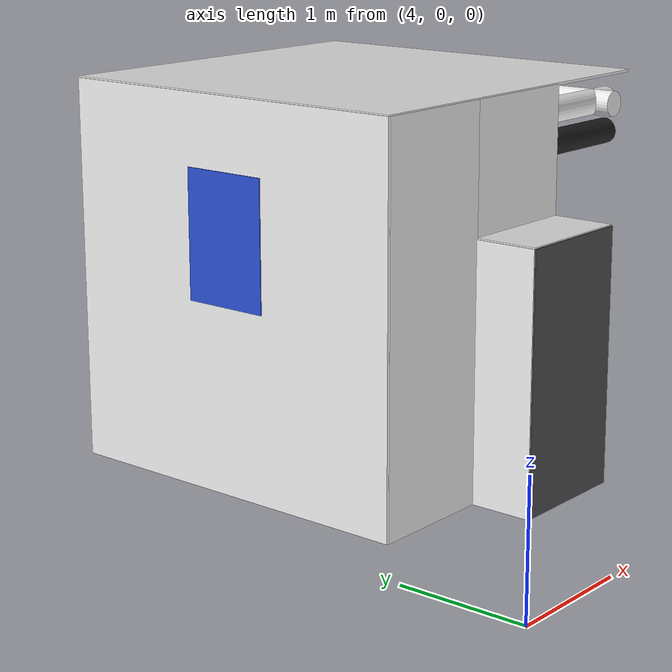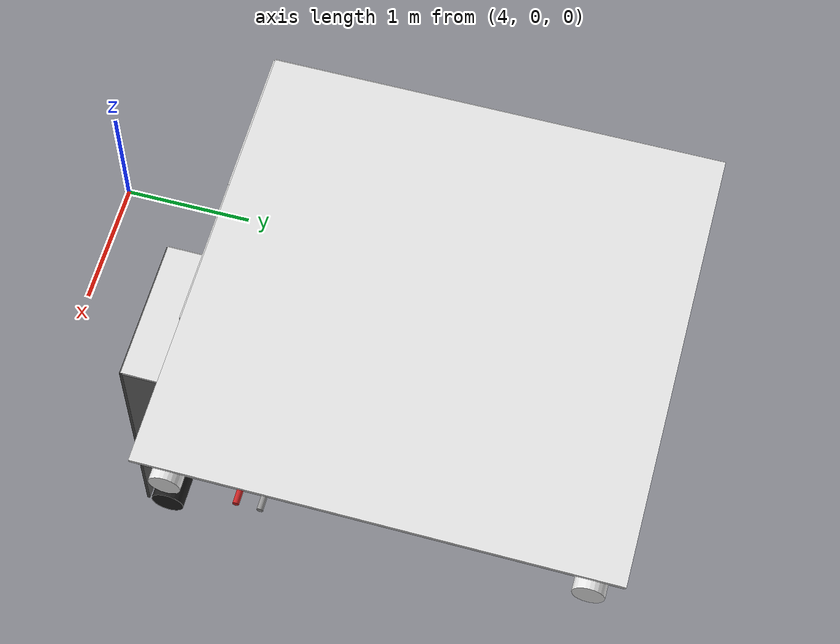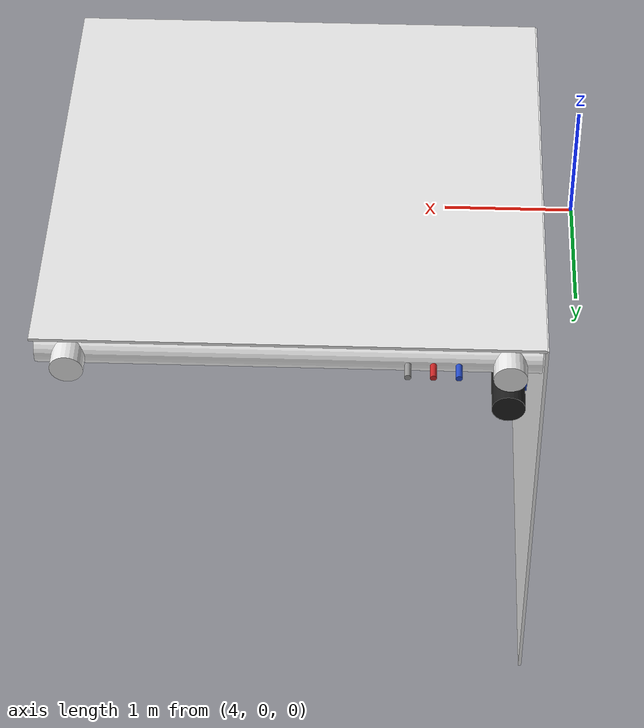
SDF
<sdf version="1.6">
 <world name="default">
  <model name="wall_right_2_1_0_3">
   <static>1</static>
   <pose>4.5 3.0 1.5 0.0 0.0 4.71</pose>
   <link name="link">
    <collision name="collision"><geometry><box><size>3.0 0.02 3.0</size></box></geometry></collision>
    <visual name="visual">
     <material>
      <script><name>Gazebo/White</name><uri>file://media/materials/scripts/gazebo.material</uri></script>
     </material>
     <geometry><box><size>3.0 0.02 3.0</size></box></geometry>
    </visual>
   </link>
  </model>
  <model name="wall_top_2_1_0_3">
   <static>1</static>
   <pose>6.0 3.0 3.0 1.57 0.0 3.14</pose>
   <link name="link">
    <collision name="collision"><geometry><box><size>3.0 0.02 3.0</size></box></geometry></collision>
    <visual name="visual">
     <material>
      <script><name>Gazebo/White</name><uri>file://media/materials/scripts/gazebo.material</uri></script>
     </material>
     <geometry><box><size>3.0 0.02 3.0</size></box></geometry>
    </visual>
   </link>
  </model>
  <model name="white_pipe_left_2_1_0_3">
   <static>1</static>
   <pose>6.0 3.0 2.76 0.0 0.0 3.14</pose>
   <link name="link_0">
    <visual name="visual">
     <pose>-1.3 0 0 1.57 0 0</pose>
     <geometry><cylinder><radius>0.1</radius><length>3.0</length></cylinder></geometry>
     <material>
      <script><uri>file://media/materials/scripts/gazebo.material</uri><name>Gazebo/White</name></script>
     </material>
    </visual>
    <collision name="collision">
     <pose>-1.3 0 0 1.57 0 0</pose>
     <geometry><cylinder><radius>0.1</radius><length>3.0</length></cylinder></geometry>
    </collision>
   </link>
  </model>
  <model name="white_pipe_right_2_1_0_3">
   <static>1</static>
   <pose>6.0 3.0 2.76 0.0 0.0 3.14</pose>
   <link name="link_0">
    <visual name="visual">
     <pose>1.3 0 0 1.57 0 0</pose>
     <geometry><cylinder><radius>0.1</radius><length>3.0</length></cylinder></geometry>
     <material>
      <script><uri>file://media/materials/scripts/gazebo.material</uri><name>Gazebo/White</name></script>
     </material>
    </visual>
    <collision name="collision">
     <pose>1.3 0 0 1.57 0 0</pose>
     <geometry><cylinder><radius>0.1</radius><length>3.0</length></cylinder></geometry>
    </collision>
   </link>
  </model>
  <model name="black_pipe_right_2_1_0_3">
   <static>1</static>
   <pose>6.0 3.0 2.76 0.0 0.0 3.14</pose>
   <link name="link_0">
    <visual name="visual">
     <pose>1.3 0 -0.25 1.57 0 0</pose>
     <geometry><cylinder><radius>0.1</radius><length>3.0</length></cylinder></geometry>
     <material>
      <script><uri>file://media/materials/scripts/gazebo.material</uri><name>Gazebo/Black</name></script>
     </material>
    </visual>
    <collision name="collision">
     <pose>1.3 0 -0.25 1.57 0 0</pose>
     <geometry><cylinder><radius>0.1</radius><length>3.0</length></cylinder></geometry>
    </collision>
   </link>
  </model>
  <model name="grey_pipe_right_2_1_0_3">
   <static>1</static>
   <pose>6.0 3.0 2.76 0.0 0.0 3.14</pose>
   <link name="link_0">
    <visual name="visual">
     <pose>0.7 0 0 1.57 0 0</pose>
     <geometry><cylinder><radius>0.02</radius><length>3.0</length></cylinder></geometry>
     <material>
      <script><uri>file://media/materials/scripts/gazebo.material</uri><name>Gazebo/Grey</name></script>
     </material>
    </visual>
    <collision name="collision">
     <pose>0.7 0 0 1.57 0 0</pose>
     <geometry><cylinder><radius>0.02</radius><length>3.0</length></cylinder></geometry>
    </collision>
   </link>
  </model>
  <model name="red_pipe_right_2_1_0_3">
   <static>1</static>
   <pose>6.0 3.0 2.76 0.0 0.0 3.14</pose>
   <link name="link_0">
    <visual name="visual">
     <pose>0.85 0 0 1.57 0 0</pose>
     <geometry><cylinder><radius>0.02</radius><length>3.0</length></cylinder></geometry>
     <material>
      <script><uri>file://media/materials/scripts/gazebo.material</uri><name>Gazebo/Red</name></script>
     </material>
    </visual>
    <collision name="collision">
     <pose>0.85 0 0 1.57 0 0</pose>
     <geometry><cylinder><radius>0.02</radius><length>3.0</length></cylinder></geometry>
    </collision>
   </link>
  </model>
  <model name="blue_pipe_right_2_1_0_3">
   <static>1</static>
   <pose>6.0 3.0 2.76 0.0 0.0 3.14</pose>
   <link name="link_0">
    <visual name="visual">
     <pose>1 0 0 1.57 0 0</pose>
     <geometry><cylinder><radius>0.02</radius><length>3.0</length></cylinder></geometry>
     <material>
      <script><uri>file://media/materials/scripts/gazebo.material</uri><name>Gazebo/Blue</name></script>
     </material>
    </visual>
    <collision name="collision">
     <pose>1 0 0 1.57 0 0</pose>
     <geometry><cylinder><radius>0.02</radius><length>3.0</length></cylinder></geometry>
    </collision>
   </link>
  </model>
  <model name="white_pipe_left_1_2_1_0_3">
   <static>1</static>
   <pose>6.0 3.0 2.76 0.0 0.0 4.71</pose>
   <link name="link_0">
    <visual name="visual">
     <pose>-1.3 0 0 1.57 0 0</pose>
     <geometry><cylinder><radius>0.1</radius><length>3.0</length></cylinder></geometry>
     <material>
      <script><uri>file://media/materials/scripts/gazebo.material</uri><name>Gazebo/White</name></script>
     </material>
    </visual>
    <collision name="collision">
     <pose>-1.3 0 0 1.57 0 0</pose>
     <geometry><cylinder><radius>0.1</radius><length>3.0</length></cylinder></geometry>
    </collision>
   </link>
  </model>
  <model name="white_pipe_right_1_2_1_0_3">
   <static>1</static>
   <pose>6.0 3.0 2.76 0.0 0.0 4.71</pose>
   <link name="link_0">
    <visual name="visual">
     <pose>1.3 0 0 1.57 0 0</pose>
     <geometry><cylinder><radius>0.1</radius><length>3.0</length></cylinder></geometry>
     <material>
      <script><uri>file://media/materials/scripts/gazebo.material</uri><name>Gazebo/White</name></script>
     </material>
    </visual>
    <collision name="collision">
     <pose>1.3 0 0 1.57 0 0</pose>
     <geometry><cylinder><radius>0.1</radius><length>3.0</length></cylinder></geometry>
    </collision>
   </link>
  </model>
  <model name="black_pipe_right_1_2_1_0_3">
   <static>1</static>
   <pose>6.0 3.0 2.76 0.0 0.0 4.71</pose>
   <link name="link_0">
    <visual name="visual">
     <pose>1.3 0 -0.25 1.57 0 0</pose>
     <geometry><cylinder><radius>0.1</radius><length>3.0</length></cylinder></geometry>
     <material>
      <script><uri>file://media/materials/scripts/gazebo.material</uri><name>Gazebo/Black</name></script>
     </material>
    </visual>
    <collision name="collision">
     <pose>1.3 0 -0.25 1.57 0 0</pose>
     <geometry><cylinder><radius>0.1</radius><length>3.0</length></cylinder></geometry>
    </collision>
   </link>
  </model>
  <model name="grey_pipe_right_1_2_1_0_3">
   <static>1</static>
   <pose>6.0 3.0 2.76 0.0 0.0 4.71</pose>
   <link name="link_0">
    <visual name="visual">
     <pose>0.7 0 0 1.57 0 0</pose>
     <geometry><cylinder><radius>0.02</radius><length>3.0</length></cylinder></geometry>
     <material>
      <script><uri>file://media/materials/scripts/gazebo.material</uri><name>Gazebo/Grey</name></script>
     </material>
    </visual>
    <collision name="collision">
     <pose>0.7 0 0 1.57 0 0</pose>
     <geometry><cylinder><radius>0.02</radius><length>3.0</length></cylinder></geometry>
    </collision>
   </link>
  </model>
  <model name="red_pipe_right_1_2_1_0_3">
   <static>1</static>
   <pose>6.0 3.0 2.76 0.0 0.0 4.71</pose>
   <link name="link_0">
    <visual name="visual">
     <pose>0.85 0 0 1.57 0 0</pose>
     <geometry><cylinder><radius>0.02</radius><length>3.0</length></cylinder></geometry>
     <material>
      <script><uri>file://media/materials/scripts/gazebo.material</uri><name>Gazebo/Red</name></script>
     </material>
    </visual>
    <collision name="collision">
     <pose>0.85 0 0 1.57 0 0</pose>
     <geometry><cylinder><radius>0.02</radius><length>3.0</length></cylinder></geometry>
    </collision>
   </link>
  </model>
  <model name="panel_2_1_0_3">
   <static>1</static>
   <pose>4.5 3.0 1.95 0.0 0.0 3.14</pose>
   <link name="link">
    <collision name="collision"><geometry><box><size>0.04 0.7 1</size></box></geometry></collision>
    <visual name="visual">
     <material>
      <script><name>Gazebo/Blue</name><uri>file://media/materials/scripts/gazebo.material</uri></script>
     </material>
     <geometry><box><size>0.04 0.7 1</size></box></geometry>
    </visual>
   </link>
  </model>
  <model name="wall_front_front_left_2_1_0_3">
   <static>1</static>
   <pose>5.0 1.5 1.5 0.0 0.0 3.14</pose>
   <link name="link">
    <collision name="collision"><geometry><box><size>1.0 0.02 3.0</size></box></geometry></collision>
    <visual name="visual">
     <material>
      <script><name>Gazebo/White</name><uri>file://media/materials/scripts/gazebo.material</uri></script>
     </material>
     <geometry><box><size>1.0 0.02 3.0</size></box></geometry>
    </visual>
   </link>
  </model>
  <model name="wall_front_front_up_2_1_0_3">
   <static>1</static>
   <pose>6.0 1.5 2.5 0.0 0.0 3.14</pose>
   <link name="link">
    <collision name="collision"><geometry><box><size>1.0 0.02 1.0</size></box></geometry></collision>
    <visual name="visual">
     <material>
      <script><name>Gazebo/White</name><uri>file://media/materials/scripts/gazebo.material</uri></script>
     </material>
     <geometry><box><size>1.0 0.02 1.0</size></box></geometry>
    </visual>
   </link>
  </model>
  <model name="wall_front_inside_back_2_1_0_3">
   <static>1</static>
   <pose>6.0 1.0 1.0 0.0 0.0 3.14</pose>
   <link name="link">
    <collision name="collision"><geometry><box><size>1 0.02 2</size></box></geometry></collision>
    <visual name="visual">
     <material>
      <script><name>Gazebo/DarkGrey</name><uri>file://media/materials/scripts/gazebo.material</uri></script>
     </material>
     <geometry><box><size>1 0.02 2</size></box></geometry>
    </visual>
   </link>
  </model>
  <model name="wall_front_inside_right_2_1_0_3">
   <static>1</static>
   <pose>5.5 1.25 1.0 0.0 0.0 4.71</pose>
   <link name="link">
    <collision name="collision"><geometry><box><size>0.5 0.02 2</size></box></geometry></collision>
    <visual name="visual">
     <material>
      <script><name>Gazebo/White</name><uri>file://media/materials/scripts/gazebo.material</uri></script>
     </material>
     <geometry><box><size>0.5 0.02 2</size></box></geometry>
    </visual>
   </link>
  </model>
  <model name="wall_front_inside_top_2_1_0_3">
   <static>1</static>
   <pose>6.0 1.25 2.0 1.57 0.0 3.14</pose>
   <link name="link">
    <collision name="collision"><geometry><box><size>1 0.02 0.5</size></box></geometry></collision>
    <visual name="visual">
     <material>
      <script><name>Gazebo/White</name><uri>file://media/materials/scripts/gazebo.material</uri></script>
     </material>
     <geometry><box><size>1 0.02 0.5</size></box></geometry>
    </visual>
   </link>
  </model>
 </world>
</sdf>
